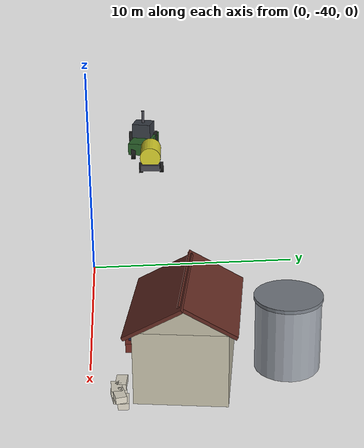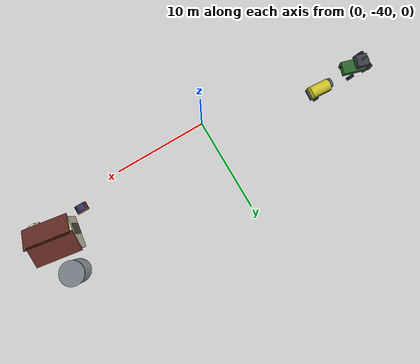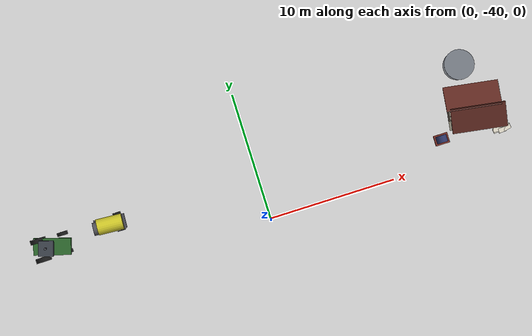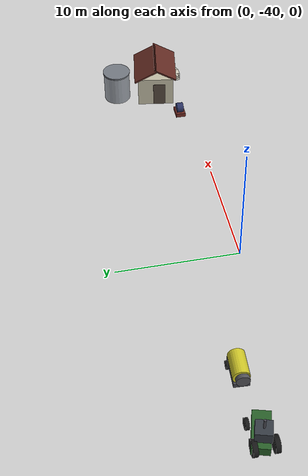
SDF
<sdf version="1.9">
 <world name="orchard_10x41">
  <model name="farm_yard">
   <static>true</static>
   <link name="link">
    <visual name="shed_wall_1">
     <pose>17.250 -36.500 5.306 0.0000 0.0000 -0.1547</pose>
     <geometry><box><size>4.0000 3.0000 2.5000</size></box></geometry>
     <material>
      <ambient>0.700 0.680 0.600 1</ambient>
      <diffuse>0.770 0.748 0.660 1</diffuse>
      <specular>0.210 0.204 0.180 1</specular>
     </material>
     <plugin filename="gz-sim-label-system" name="gz::sim::systems::Label"><label>60</label></plugin>
    </visual>
    <visual name="roof_l_2">
     <pose>17.250 -37.350 6.956 0.5000 0.0000 -0.1547</pose>
     <geometry><box><size>4.2000 2.1000 0.1200</size></box></geometry>
     <material>
      <ambient>0.350 0.150 0.120 1</ambient>
      <diffuse>0.385 0.165 0.132 1</diffuse>
      <specular>0.105 0.045 0.036 1</specular>
     </material>
     <plugin filename="gz-sim-label-system" name="gz::sim::systems::Label"><label>60</label></plugin>
    </visual>
    <visual name="roof_r_3">
     <pose>17.250 -35.650 6.956 -0.5000 0.0000 -0.1547</pose>
     <geometry><box><size>4.2000 2.1000 0.1200</size></box></geometry>
     <material>
      <ambient>0.350 0.150 0.120 1</ambient>
      <diffuse>0.385 0.165 0.132 1</diffuse>
      <specular>0.105 0.045 0.036 1</specular>
     </material>
     <plugin filename="gz-sim-label-system" name="gz::sim::systems::Label"><label>60</label></plugin>
    </visual>
    <visual name="door_4">
     <pose>15.250 -36.500 5.056 0.0000 0.0000 -0.1547</pose>
     <geometry><box><size>0.0600 1.0000 2.0000</size></box></geometry>
     <material>
      <ambient>0.300 0.260 0.220 1</ambient>
      <diffuse>0.330 0.286 0.242 1</diffuse>
      <specular>0.090 0.078 0.066 1</specular>
     </material>
     <plugin filename="gz-sim-label-system" name="gz::sim::systems::Label"><label>60</label></plugin>
    </visual>
    <visual name="tank_5">
     <pose>17.050 -33.100 5.282 0.0000 0.0000 0.0000</pose>
     <geometry><cylinder><radius>1.1000</radius><length>2.5000</length></cylinder></geometry>
     <material>
      <ambient>0.550 0.570 0.600 1</ambient>
      <diffuse>0.605 0.627 0.660 1</diffuse>
      <specular>0.165 0.171 0.180 1</specular>
     </material>
     <plugin filename="gz-sim-label-system" name="gz::sim::systems::Label"><label>60</label></plugin>
    </visual>
    <visual name="tank_lid_6">
     <pose>17.050 -33.100 6.592 0.0000 0.0000 0.0000</pose>
     <geometry><cylinder><radius>1.1500</radius><length>0.1200</length></cylinder></geometry>
     <material>
      <ambient>0.420 0.440 0.470 1</ambient>
      <diffuse>0.462 0.484 0.517 1</diffuse>
      <specular>0.126 0.132 0.141 1</specular>
     </material>
     <plugin filename="gz-sim-label-system" name="gz::sim::systems::Label"><label>60</label></plugin>
    </visual>
    <visual name="reel_frame_7">
     <pose>14.250 -38.100 3.662 0.0000 0.0000 0.0000</pose>
     <geometry><box><size>1.1000 0.8000 0.3500</size></box></geometry>
     <material>
      <ambient>0.400 0.150 0.120 1</ambient>
      <diffuse>0.440 0.165 0.132 1</diffuse>
      <specular>0.120 0.045 0.036 1</specular>
     </material>
     <plugin filename="gz-sim-label-system" name="gz::sim::systems::Label"><label>60</label></plugin>
    </visual>
    <visual name="reel_drum_8">
     <pose>14.250 -38.100 4.102 1.5708 0.0000 0.0000</pose>
     <geometry><cylinder><radius>0.4200</radius><length>0.5500</length></cylinder></geometry>
     <material>
      <ambient>0.150 0.180 0.350 1</ambient>
      <diffuse>0.165 0.198 0.385 1</diffuse>
      <specular>0.045 0.054 0.105 1</specular>
     </material>
     <plugin filename="gz-sim-label-system" name="gz::sim::systems::Label"><label>60</label></plugin>
    </visual>
    <visual name="sack_9">
     <pose>18.450 -38.692 4.286 0.0000 0.0000 0.1635</pose>
     <geometry><box><size>0.6000 0.3500 0.2200</size></box></geometry>
     <material>
      <ambient>0.780 0.760 0.700 1</ambient>
      <diffuse>0.858 0.836 0.770 1</diffuse>
      <specular>0.234 0.228 0.210 1</specular>
     </material>
     <plugin filename="gz-sim-label-system" name="gz::sim::systems::Label"><label>60</label></plugin>
    </visual>
    <visual name="sack_10">
     <pose>18.830 -38.779 4.286 0.0000 0.0000 0.1552</pose>
     <geometry><box><size>0.6000 0.3500 0.2200</size></box></geometry>
     <material>
      <ambient>0.780 0.760 0.700 1</ambient>
      <diffuse>0.858 0.836 0.770 1</diffuse>
      <specular>0.234 0.228 0.210 1</specular>
     </material>
     <plugin filename="gz-sim-label-system" name="gz::sim::systems::Label"><label>60</label></plugin>
    </visual>
    <visual name="sack_11">
     <pose>19.210 -38.594 4.286 0.0000 0.0000 -0.0111</pose>
     <geometry><box><size>0.6000 0.3500 0.2200</size></box></geometry>
     <material>
      <ambient>0.780 0.760 0.700 1</ambient>
      <diffuse>0.858 0.836 0.770 1</diffuse>
      <specular>0.234 0.228 0.210 1</specular>
     </material>
     <plugin filename="gz-sim-label-system" name="gz::sim::systems::Label"><label>60</label></plugin>
    </visual>
    <visual name="sack_12">
     <pose>18.450 -38.642 4.516 0.0000 0.0000 -0.1241</pose>
     <geometry><box><size>0.6000 0.3500 0.2200</size></box></geometry>
     <material>
      <ambient>0.780 0.760 0.700 1</ambient>
      <diffuse>0.858 0.836 0.770 1</diffuse>
      <specular>0.234 0.228 0.210 1</specular>
     </material>
     <plugin filename="gz-sim-label-system" name="gz::sim::systems::Label"><label>60</label></plugin>
    </visual>
    <visual name="sack_13">
     <pose>18.830 -38.796 4.516 0.0000 0.0000 0.0243</pose>
     <geometry><box><size>0.6000 0.3500 0.2200</size></box></geometry>
     <material>
      <ambient>0.780 0.760 0.700 1</ambient>
      <diffuse>0.858 0.836 0.770 1</diffuse>
      <specular>0.234 0.228 0.210 1</specular>
     </material>
     <plugin filename="gz-sim-label-system" name="gz::sim::systems::Label"><label>60</label></plugin>
    </visual>
    <visual name="sack_14">
     <pose>19.210 -38.718 4.516 0.0000 0.0000 0.2182</pose>
     <geometry><box><size>0.6000 0.3500 0.2200</size></box></geometry>
     <material>
      <ambient>0.780 0.760 0.700 1</ambient>
      <diffuse>0.858 0.836 0.770 1</diffuse>
      <specular>0.234 0.228 0.210 1</specular>
     </material>
     <plugin filename="gz-sim-label-system" name="gz::sim::systems::Label"><label>60</label></plugin>
    </visual>
    <collision name="c0">
     <pose>17.250 -36.500 5.306 0.0000 0.0000 -0.1547</pose>
     <geometry><box><size>4.0000 3.0000 2.5000</size></box></geometry>
    </collision>
    <collision name="c1">
     <pose>17.050 -33.100 5.282 0.0000 0.0000 0.0000</pose>
     <geometry><cylinder><radius>1.1000</radius><length>2.5000</length></cylinder></geometry>
    </collision>
    <collision name="c2">
     <pose>14.250 -38.100 3.982 0.0000 0.0000 0.0000</pose>
     <geometry><box><size>1.1000 0.9000 1.0000</size></box></geometry>
    </collision>
   </link>
  </model>
  <model name="machinery">
   <static>true</static>
   <link name="link">
    <visual name="tr_body_1">
     <pose>-16.750 -37.000 1.086 0.0000 0.0000 -0.2869</pose>
     <geometry><box><size>2.9000 1.3000 0.7500</size></box></geometry>
     <material>
      <ambient>0.150 0.350 0.150 1</ambient>
      <diffuse>0.165 0.385 0.165 1</diffuse>
      <specular>0.045 0.105 0.045 1</specular>
     </material>
     <plugin filename="gz-sim-label-system" name="gz::sim::systems::Label"><label>61</label></plugin>
    </visual>
    <visual name="tr_cab_2">
     <pose>-17.200 -37.000 1.916 0.0000 0.0000 -0.2869</pose>
     <geometry><box><size>1.1500 1.2000 0.9000</size></box></geometry>
     <material>
      <ambient>0.200 0.220 0.250 1</ambient>
      <diffuse>0.220 0.242 0.275 1</diffuse>
      <specular>0.060 0.066 0.075 1</specular>
     </material>
     <plugin filename="gz-sim-label-system" name="gz::sim::systems::Label"><label>61</label></plugin>
    </visual>
    <visual name="tr_exh_3">
     <pose>-17.200 -37.000 2.716 0.0000 0.0000 0.0000</pose>
     <geometry><cylinder><radius>0.0900</radius><length>0.9000</length></cylinder></geometry>
     <material>
      <ambient>0.250 0.250 0.280 1</ambient>
      <diffuse>0.275 0.275 0.308 1</diffuse>
      <specular>0.075 0.075 0.084 1</specular>
     </material>
     <plugin filename="gz-sim-label-system" name="gz::sim::systems::Label"><label>61</label></plugin>
    </visual>
    <visual name="tr_wheel_4">
     <pose>-15.750 -36.280 0.786 -1.5708 0.0000 0.0000</pose>
     <geometry><cylinder><radius>0.4200</radius><length>0.2800</length></cylinder></geometry>
     <material>
      <ambient>0.080 0.080 0.080 1</ambient>
      <diffuse>0.088 0.088 0.088 1</diffuse>
      <specular>0.024 0.024 0.024 1</specular>
     </material>
     <plugin filename="gz-sim-label-system" name="gz::sim::systems::Label"><label>61</label></plugin>
    </visual>
    <visual name="tr_wheel_5">
     <pose>-15.750 -37.720 0.786 -1.5708 0.0000 0.0000</pose>
     <geometry><cylinder><radius>0.4200</radius><length>0.2800</length></cylinder></geometry>
     <material>
      <ambient>0.080 0.080 0.080 1</ambient>
      <diffuse>0.088 0.088 0.088 1</diffuse>
      <specular>0.024 0.024 0.024 1</specular>
     </material>
     <plugin filename="gz-sim-label-system" name="gz::sim::systems::Label"><label>61</label></plugin>
    </visual>
    <visual name="tr_wheel_6">
     <pose>-17.700 -36.250 0.986 -1.5708 0.0000 0.0000</pose>
     <geometry><cylinder><radius>0.6200</radius><length>0.3600</length></cylinder></geometry>
     <material>
      <ambient>0.080 0.080 0.080 1</ambient>
      <diffuse>0.088 0.088 0.088 1</diffuse>
      <specular>0.024 0.024 0.024 1</specular>
     </material>
     <plugin filename="gz-sim-label-system" name="gz::sim::systems::Label"><label>61</label></plugin>
    </visual>
    <visual name="tr_wheel_7">
     <pose>-17.700 -37.750 0.986 -1.5708 0.0000 0.0000</pose>
     <geometry><cylinder><radius>0.6200</radius><length>0.3600</length></cylinder></geometry>
     <material>
      <ambient>0.080 0.080 0.080 1</ambient>
      <diffuse>0.088 0.088 0.088 1</diffuse>
      <specular>0.024 0.024 0.024 1</specular>
     </material>
     <plugin filename="gz-sim-label-system" name="gz::sim::systems::Label"><label>61</label></plugin>
    </visual>
    <visual name="sp_tank_8">
     <pose>-11.950 -36.700 1.990 0.0000 1.5708 -0.0583</pose>
     <geometry><cylinder><radius>0.6200</radius><length>2.0000</length></cylinder></geometry>
     <material>
      <ambient>0.750 0.720 0.150 1</ambient>
      <diffuse>0.825 0.792 0.165 1</diffuse>
      <specular>0.225 0.216 0.045 1</specular>
     </material>
     <plugin filename="gz-sim-label-system" name="gz::sim::systems::Label"><label>61</label></plugin>
    </visual>
    <visual name="sp_fan_9">
     <pose>-13.100 -36.700 1.940 0.0000 1.5708 -0.0583</pose>
     <geometry><cylinder><radius>0.5000</radius><length>0.3500</length></cylinder></geometry>
     <material>
      <ambient>0.300 0.300 0.320 1</ambient>
      <diffuse>0.330 0.330 0.352 1</diffuse>
      <specular>0.090 0.090 0.096 1</specular>
     </material>
     <plugin filename="gz-sim-label-system" name="gz::sim::systems::Label"><label>61</label></plugin>
    </visual>
    <visual name="sp_chassis_10">
     <pose>-11.950 -36.700 1.410 0.0000 0.0000 -0.0583</pose>
     <geometry><box><size>2.4000 1.1500 0.3500</size></box></geometry>
     <material>
      <ambient>0.250 0.250 0.280 1</ambient>
      <diffuse>0.275 0.275 0.308 1</diffuse>
      <specular>0.075 0.075 0.084 1</specular>
     </material>
     <plugin filename="gz-sim-label-system" name="gz::sim::systems::Label"><label>61</label></plugin>
    </visual>
    <visual name="sp_wheel_11">
     <pose>-11.250 -36.080 1.310 -1.5708 0.0000 0.0000</pose>
     <geometry><cylinder><radius>0.3200</radius><length>0.2200</length></cylinder></geometry>
     <material>
      <ambient>0.080 0.080 0.080 1</ambient>
      <diffuse>0.088 0.088 0.088 1</diffuse>
      <specular>0.024 0.024 0.024 1</specular>
     </material>
     <plugin filename="gz-sim-label-system" name="gz::sim::systems::Label"><label>61</label></plugin>
    </visual>
    <visual name="sp_wheel_12">
     <pose>-11.250 -37.320 1.310 -1.5708 0.0000 0.0000</pose>
     <geometry><cylinder><radius>0.3200</radius><length>0.2200</length></cylinder></geometry>
     <material>
      <ambient>0.080 0.080 0.080 1</ambient>
      <diffuse>0.088 0.088 0.088 1</diffuse>
      <specular>0.024 0.024 0.024 1</specular>
     </material>
     <plugin filename="gz-sim-label-system" name="gz::sim::systems::Label"><label>61</label></plugin>
    </visual>
    <collision name="c0">
     <pose>-16.750 -37.000 1.266 0.0000 0.0000 -0.2869</pose>
     <geometry><box><size>3.0000 1.6000 1.8000</size></box></geometry>
    </collision>
    <collision name="c1">
     <pose>-11.950 -36.700 1.890 0.0000 0.0000 -0.0583</pose>
     <geometry><box><size>2.6000 1.3000 1.6000</size></box></geometry>
    </collision>
   </link>
  </model>
 </world>
</sdf>
